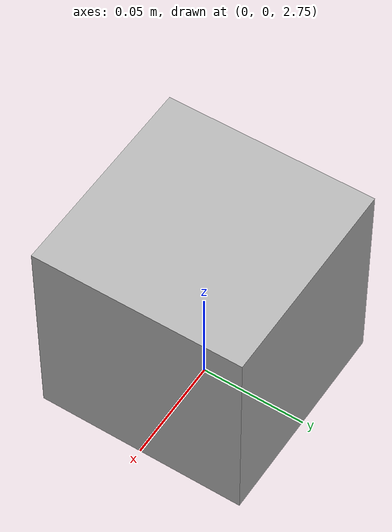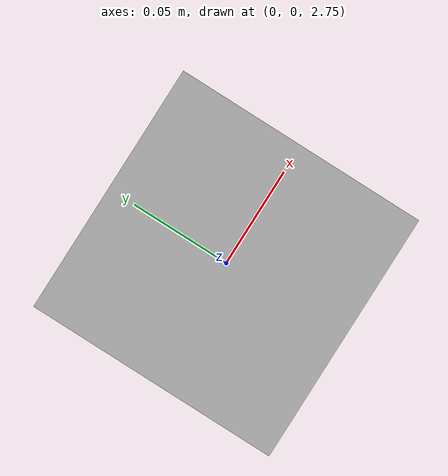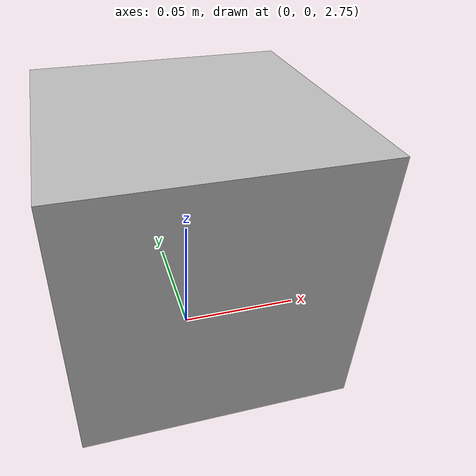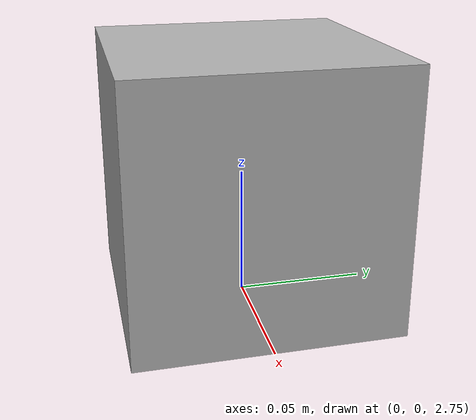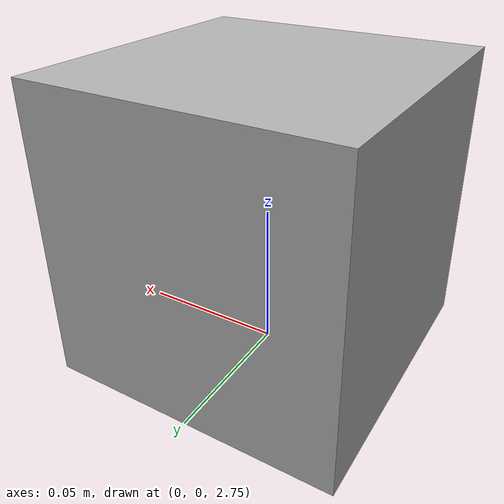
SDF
<sdf version='1.10'>
  <world name='world_cam'>
    <physics name='1ms' type='ignored'>
      <max_step_size>0.001</max_step_size>
      <real_time_factor>1</real_time_factor>
      <real_time_update_rate>1000</real_time_update_rate>
    </physics>
    <plugin name='gz::sim::systems::Physics' filename='gz-sim-physics-system'/>
    <plugin name='gz::sim::systems::UserCommands' filename='gz-sim-user-commands-system'/>
    <plugin name='gz::sim::systems::SceneBroadcaster' filename='gz-sim-scene-broadcaster-system'/>
    <plugin name='gz::sim::systems::Contact' filename='gz-sim-contact-system'/>
    <plugin
      filename="gz-sim-sensors-system"
      name="gz::sim::systems::Sensors">
      <render_engine>ogre2</render_engine>
    </plugin>
    <gravity>0 0 -9.8000000000000007</gravity>
    <magnetic_field>5.5644999999999998e-06 2.2875799999999999e-05 -4.2388400000000002e-05</magnetic_field>
    <atmosphere type='adiabatic'/>
    <scene>
      <ambient>0.400000006 0.400000006 0.400000006 1</ambient>
      <background>0.699999988 0.699999988 0.699999988 1</background>
      <shadows>true</shadows>
    </scene>
    <model name='ground_plane'>
      <static>true</static>
      <link name='link'>
        <collision name='collision'>
          <geometry>
            <plane>
              <normal>0 0 1</normal>
              <size>100 100</size>
            </plane>
          </geometry>
          <surface>
            <friction>
              <ode/>
            </friction>
            <bounce/>
            <contact/>
          </surface>
        </collision>
        <visual name='visual'>
          <geometry>
            <plane>
              <normal>0 0 1</normal>
              <size>100 100</size>
            </plane>
          </geometry>
          <material>
            <ambient>0.800000012 0.800000012 0.800000012 1</ambient>
            <diffuse>0.800000012 0.800000012 0.800000012 1</diffuse>
            <specular>0.800000012 0.800000012 0.800000012 1</specular>
          </material>
        </visual>
        <visual name='base_link_fixed_joint_lump__marker_link_visual_1'>
          <pose>0 0 0 0 0 0</pose>
          <geometry>
            <mesh>
              <scale>1 1 1</scale>
              <uri>../../../../robot_custom_description/share/robot_custom_description/models/markers/board.dae</uri>
            </mesh>
          </geometry>
        </visual>
        <pose>0 0 0 0 0 0</pose>
        <inertial>
          <pose>0 0 0 0 0 0</pose>
          <mass>1</mass>
          <inertia>
            <ixx>1</ixx>
            <ixy>0</ixy>
            <ixz>0</ixz>
            <iyy>1</iyy>
            <iyz>0</iyz>
            <izz>1</izz>
          </inertia>
        </inertial>
        <enable_wind>false</enable_wind>
      </link>
      <pose>0 0 0 0 0 0</pose>
      <self_collide>false</self_collide>
    </model>
    <model name='cam'>
      <static>true</static>
      <pose>0 0 2.8 0 1.5708 0</pose>
      <link name='cam_link'>
        <inertial>
          <inertia>
            <ixx>0.16666</ixx>
            <ixy>0</ixy>
            <ixz>0</ixz>
            <iyy>0.16666</iyy>
            <iyz>0</iyz>
            <izz>0.16666</izz>
          </inertia>
          <mass>1</mass>
          <pose>0 0 0 0 0 0</pose>
        </inertial>
        <collision name='cam_collision'>
          <geometry>
            <box>
              <size>0.1 0.1 0.1</size>
            </box>
          </geometry>
          <surface>
            <friction>
              <ode/>
            </friction>
            <bounce/>
            <contact/>
          </surface>
        </collision>
        <visual name='cam_visual'>
          <geometry>
            <box>
              <size>0.1 0.1 0.1</size>
            </box>
          </geometry>
          <material>
            <ambient>0.300000012 0.300000012 0.300000012 1</ambient>
            <diffuse>0.699999988 0.699999988 0.699999988 1</diffuse>
            <specular>1 1 1 1</specular>
          </material>
        </visual>
        <sensor name="cam_1" type="camera">
          <update_rate>30</update_rate>
          <topic>/cam_1</topic>
          <camera>
            <horizontal_fov>1.39626</horizontal_fov>
            <image>
              <width>3840</width>
              <height>2160</height>
            </image>
            <clip>
                <near>0.02</near>
                <far>300</far>
              </clip>
              <noise>
                <type>gaussian</type>
                <mean>0</mean>
                <stddev>0</stddev>
              </noise>
          </camera>
        </sensor>
        <pose>0 0 0 0 0 0</pose>
        <enable_wind>false</enable_wind>
      </link>
      <self_collide>false</self_collide>
    </model>
    <light name='sun' type='directional'>
      <pose>0 0 10 0 0 0</pose>
      <cast_shadows>true</cast_shadows>
      <intensity>1</intensity>
      <direction>-0.5 0.10000000000000001 -0.90000000000000002</direction>
      <diffuse>0.800000012 0.800000012 0.800000012 1</diffuse>
      <specular>0.200000003 0.200000003 0.200000003 1</specular>
      <attenuation>
        <range>1000</range>
        <linear>0.01</linear>
        <constant>0.90000000000000002</constant>
        <quadratic>0.001</quadratic>
      </attenuation>
      <spot>
        <inner_angle>0</inner_angle>
        <outer_angle>0</outer_angle>
        <falloff>0</falloff>
      </spot>
    </light>
  </world>
</sdf>
